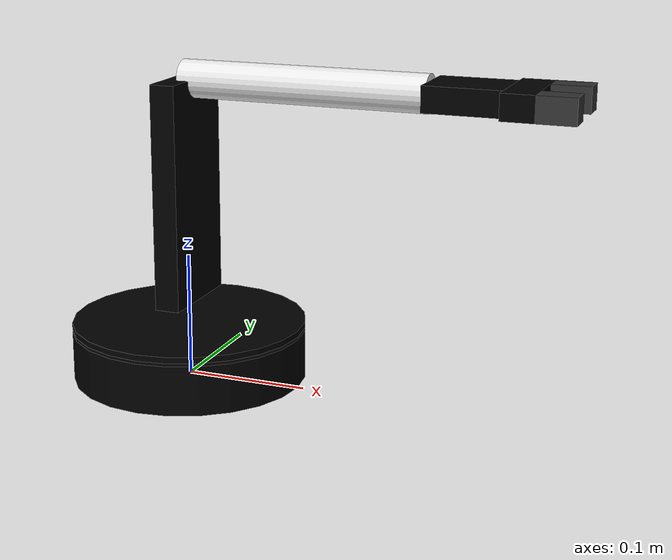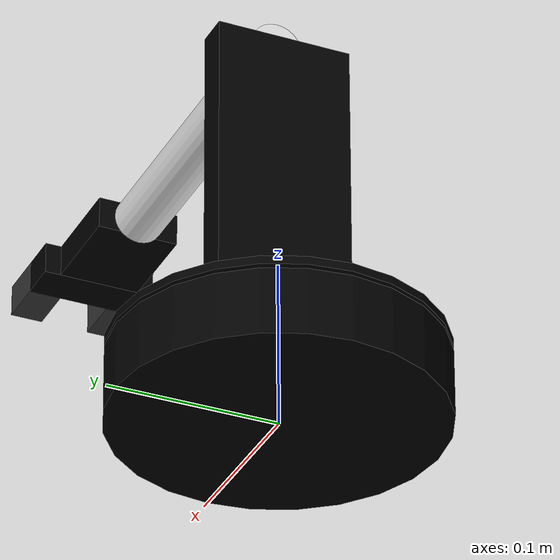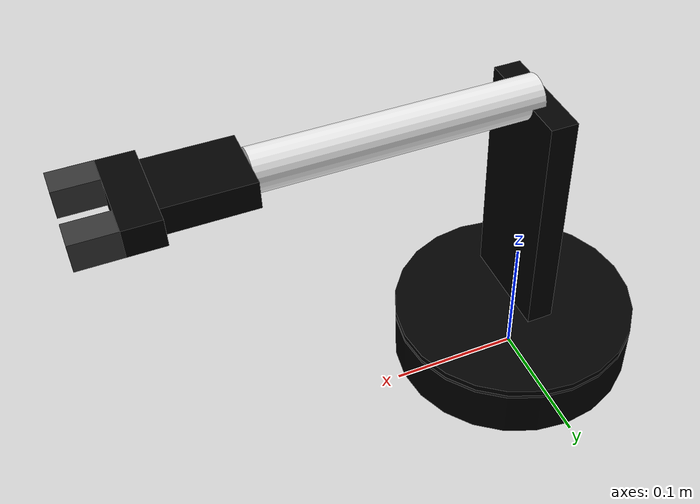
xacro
<?xml version="1.0"?>
<!-- Aangepast door René van Eendenburg op 20 april 2017 voor Gazebo -->
<robot name="lynxmotion_arm" xmlns:xacro="http://www.ros.org/wiki/xacro">

	  <!-- Import all Gazee-customization elements, including Gazebo colors -->
  <xacro:include filename="$(find al5d_description)/urdf/al5d.gazebo" />
  <!-- Import Rviz colors -->
  <xacro:include filename="$(find al5d_description)/urdf/materials.xacro" />

	<link name="base_link">
		<collision>
			<geometry>
				<cylinder length="0.04" radius="0.095" />
			</geometry>
			<origin xyz="0 0 0.02" rpy="0 0 0" />
    		</collision>

		<visual>
			<geometry>
				<cylinder length="0.04" radius="0.095" />
			</geometry>
			<material name="black"/>
			<origin xyz="0 0 0.02" rpy="0 0 0" />
		</visual>

		    <inertial>
		      <origin xyz="0 0 0.02" rpy="0 0 0" />
		      <mass value="1"/>
		      <inertia
			ixx="1.0" ixy="0.0" ixz="0.0"
			iyy="1.0" iyz="0.0"
			izz="1.0"/>
		    </inertial>

	</link>

	<link name="turret">
		<collision>
			<geometry>
				<cylinder length="0.005" radius="0.095" />
			</geometry>
		</collision>
		<visual>
			<geometry>
				<cylinder length="0.005" radius="0.095" />
			</geometry>
			<material name="black" />
		</visual>
		<inertial>
	      		<mass value="1"/>
	      		<inertia
		  			ixx="1.0" ixy="0.0" ixz="0.0"
		  			iyy="1.0" iyz="0.0"
		  			izz="1.0"/>
    		</inertial>
	</link>

	<link name="upperarm">
		<visual>
			<geometry>
				<box size="0.02 0.08 0.18" />
			</geometry>
			<material name="black" />
			<origin xyz="0 0 0.09" rpy="0 0 0" />
		</visual>
		<collision>
			<origin xyz="0 0 0.09" rpy="0 0 0" />
			<geometry>
				<box size="0.02 0.08 0.18" />
			</geometry>
		</collision>
		<inertial>
			<origin xyz="0 0 0.09" rpy="0 0 0" />
			<mass value="0.6"/>
			<inertia
				ixx="1.0" ixy="0.0" ixz="0.0"
				iyy="1.0" iyz="0.0"
				izz="1.0"/>
		</inertial>

	</link>

	<link name="forearm" >
		<visual>
			<geometry>
				<cylinder length="0.20" radius="0.015" />
			</geometry>
			<material name="silver" />

			<origin xyz="0 0 0.10" rpy="0 0 0" />
		</visual>
		<collision>
			<origin xyz="0 0 0.10" rpy="0 0 0" />
			<geometry>
				<cylinder length="0.20" radius="0.015" />
			</geometry>
		</collision>

		 <inertial>
	      		<origin xyz="0 0 0.10" rpy="0 0 0" />
	      		<mass value="0.4"/>
	      		<inertia
		  			ixx="1.0" ixy="0.0" ixz="0.0"
		  			iyy="1.0" iyz="0.0"
		  			izz="1.0"/>
    		</inertial>

	</link>

	<link name="wrist">
		<visual>
			<geometry>
				<box size="0.02 0.05 0.06" />
			</geometry>
			<material name="black" />
			<origin xyz="0 0 0.03" rpy="0 0 0" />
		</visual>

		<collision>
			<origin xyz="0 0 0.03" rpy="0 0 0" />
			<geometry>
				<box size="0.02 0.05 0.06" />
			</geometry>
		</collision>

		<inertial>
	      		<origin xyz="0 0 0.03" rpy="0 0 0" />
	      		<mass value="0.4"/>
	      		<inertia
		  			ixx="1.0" ixy="0.0" ixz="0.0"
		  			iyy="1.0" iyz="0.0"
		  			izz="1.0"/>
    		</inertial>
	</link>

	<link name="hand">
		<visual>
			<geometry>
				<box size="0.02 0.07 0.025" />
			</geometry>
			<material name="black" />
			<origin xyz="0 0 0.0125" rpy="0 0 0" />
		</visual>
		<collision>
			<origin xyz="0 0 0.0125" rpy="0 0 0" />
			<geometry>
				<box size="0.02 0.07 0.025" />
			</geometry>
		</collision>
		<inertial>
			<origin xyz="0 0 0.0125" rpy="0 0 0" />
			<mass value="0.1"/>
			<inertia
				ixx="1.0" ixy="0.0" ixz="0.0"
				iyy="1.0" iyz="0.0"
				izz="1.0"/>
		</inertial>
	</link>

	<link name="gripper_left">
		<visual>
			<geometry>
				<box size="0.02 0.02 0.03" />
			</geometry>
			<origin xyz="0 0 0.015" rpy="0 0 0" />
			<material name="grey" />

		</visual>

		<collision>
		      	<origin xyz="0 0 0.015" rpy="0 0 0" />
		      	<geometry>
				<box size="0.02 0.02 0.03" />
		        </geometry>
		</collision>
		    	<inertial>
		      		<origin xyz="0 0 0.015" rpy="0 0 0" />
		      		<mass value="0.1"/>
		      		<inertia
			  			ixx="1.0" ixy="0.0" ixz="0.0"
			  			iyy="1.0" iyz="0.0"
			  			izz="1.0"/>
		    	</inertial>
	</link>

	<link name="gripper_right">
		<visual>
			<geometry>
				<box size="0.02 0.02 0.03" />
			</geometry>
			<origin xyz="0 0 0.015" rpy="0 0 0" />
			<material name="grey" />
		</visual>

		<collision>
		      	<origin xyz="0 0 0.015" rpy="0 0 0" />
		      	<geometry>
				<box size="0.02 0.02 0.03" />
		        </geometry>
		</collision>

		<inertial>
			<origin xyz="0.0355 0 0.0345" rpy="1.57 0 0" />
			<mass value="0.1"/>
			<inertia
				ixx="1.0" ixy="0.0" ixz="0.0"
				iyy="1.0" iyz="0.0"
				izz="1.0"/>
		</inertial>
	</link>

	<joint name="base_link2turret" type="continuous">
		<parent link="base_link" />
		<child link="turret" />
		<origin xyz="0 0 0.045" rpy="0 0 0" />
		<axis xyz="0 0 -1" />
	</joint>
	<joint name="turret2upperarm" type="continuous">
		<parent link="turret" />
		<child link="upperarm" />
		<origin xyz="0 0 0.02" rpy="0 0 0" />
		<axis xyz="0 -1 0" />
	</joint>
	<joint name="upperarm2forearm" type="continuous">
		<parent link="upperarm" />
		<child link="forearm" />
		<origin xyz="0 0 0.18" rpy="0 1.5708 0" />
		<axis xyz="0 1 0" />
	</joint>
	<joint name="forearm2wrist" type="continuous">
		<parent link="forearm" />
		<child link="wrist" />
		<origin xyz="0 0 0.20" rpy="0 0 0" />
		<axis xyz="0 -1 0" />
	</joint>
	<joint name="wrist2hand" type="continuous">
		<parent link="wrist" />
		<child link="hand" />
		<origin xyz="0 0 0.06" rpy="0 0 0" />
		<axis xyz="0 0 1" />
	</joint>
	<joint name="gripper_left2hand" type="prismatic">
		<parent link="hand" />
		<child link="gripper_left" />
		<origin xyz="0 0.025 0.025" rpy="0 0 0" />
		<limit effort="1000.0" lower="-0.02" upper="0.02" velocity="0.5" />
		<axis xyz="0 -1 0" />
	</joint>
	<joint name="gripper_right2hand" type="prismatic">
		<parent link="hand" />
		<child link="gripper_right" />
		<origin xyz="0 -0.025 0.025" rpy="0 0 0" />
		<limit effort="1000.0" lower="0.02" upper="-0.02" velocity="0.5" />
		<axis xyz="0 1 0" />
                <mimic joint="gripper_left2hand" multiplier="1" offset="0"/>
	</joint>
</robot>

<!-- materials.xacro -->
<robot>

  <material name="black">
    <color rgba="0.0 0.0 0.0 1.0"/>
  </material>

  <material name="blue">
    <color rgba="0.0 0.0 0.8 1.0"/>
  </material>

  <material name="green">
    <color rgba="0.0 0.8 0.0 1.0"/>
  </material>

  <material name="grey">
    <color rgba="0.2 0.2 0.2 1.0"/>
  </material>

  <material name="gray">
    <color rgba="0.2 0.2 0.2 1.0"/>
  </material>

  <material name="orange">
    <color rgba="${255/255} ${108/255} ${10/255} 1.0"/>
  </material>

  <material name="brown">
    <color rgba="${222/255} ${207/255} ${195/255} 1.0"/>
  </material>

  <material name="red">
    <color rgba="0.8 0.0 0.0 1.0"/>
  </material>

  <material name="white">
    <color rgba="1.0 1.0 1.0 1.0"/>
  </material>

  <material name="silver">
    <color rgba="0.9 0.9 0.9 1" />
  </material>

</robot>
